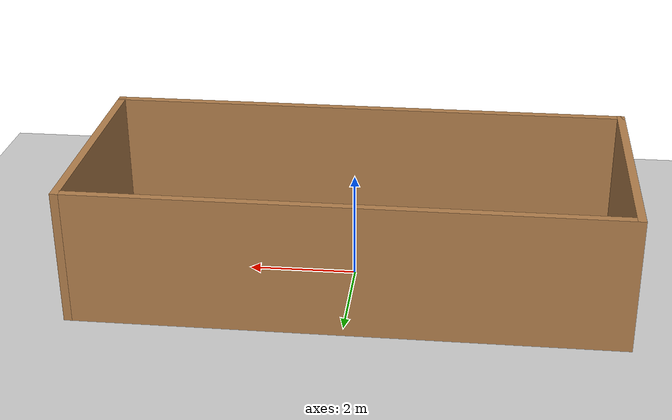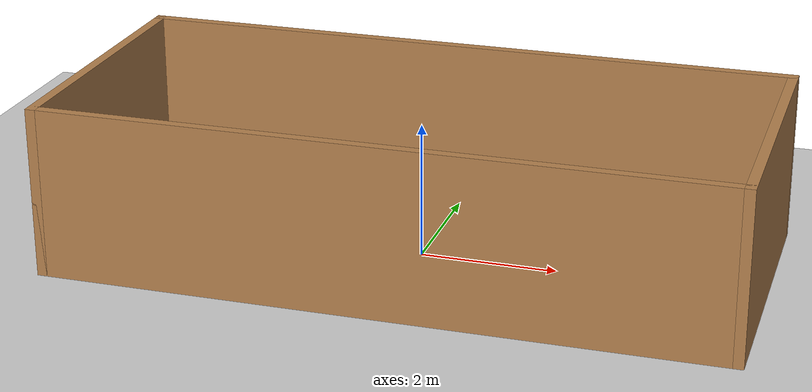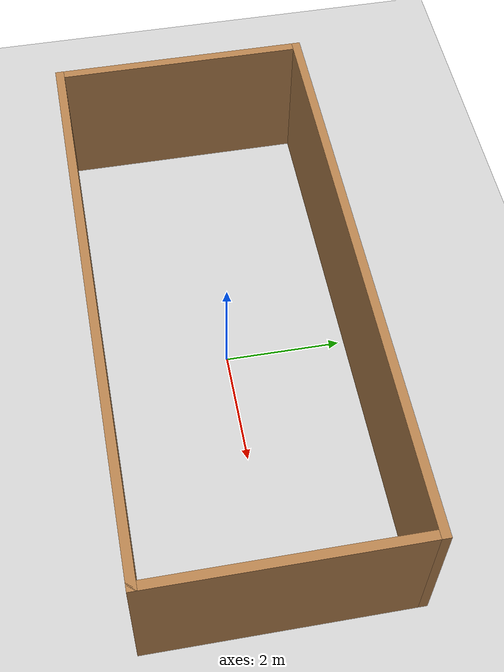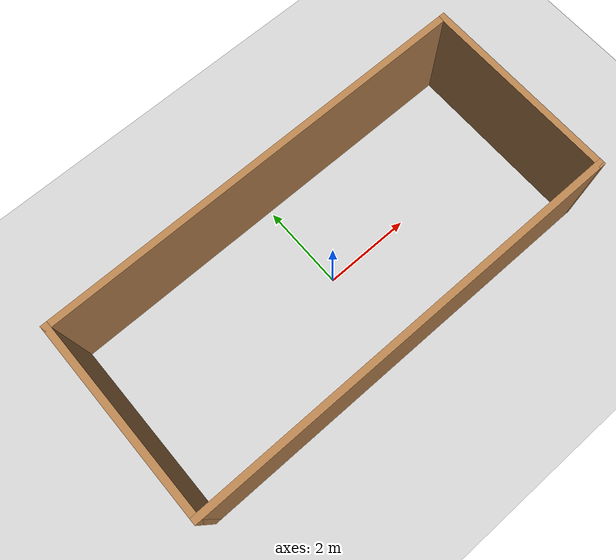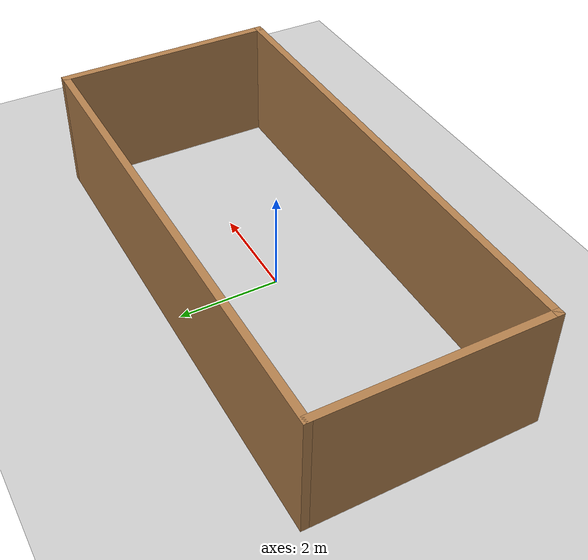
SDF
<sdf version="1.6">
 <world name="default">
  <light name="sun" type="directional">
   <pose>0 0 10 0 -0 0</pose>
   <diffuse>0.8 0.8 0.8 1</diffuse>
   <specular>0.1 0.1 0.1 1</specular>
   <attenuation>
    <range>1000</range>
    <constant>0.9</constant>
    <linear>0.01</linear>
    <quadratic>0.001</quadratic>
   </attenuation>
   <direction>-0.5 0.5 -1</direction>
  </light>
  <model name="ground_plane">
   <static>1</static>
   <link name="link">
    <collision name="collision">
     <geometry><plane><normal>0 0 1</normal><size>100 100</size></plane></geometry>
     <surface><friction><ode><mu>100</mu><mu2>50</mu2></ode></friction></surface>
    </collision>
    <visual name="visual">
     <cast_shadows>0</cast_shadows>
     <geometry><plane><normal>0 0 1</normal><size>100 100</size></plane></geometry>
     <material>
      <script><uri>file://media/materials/scripts/gazebo.material</uri><name>Gazebo/Grey</name></script>
     </material>
    </visual>
   </link>
  </model>
  <gravity>0 0 -9.8</gravity>
  <magnetic_field>6e-06 2.3e-05 -4.2e-05</magnetic_field>
  <atmosphere type="adiabatic"/>
  <physics name="default_physics" default="0" type="ode">
   <max_step_size>0.001</max_step_size>
   <real_time_factor>1</real_time_factor>
   <real_time_update_rate>1000</real_time_update_rate>
  </physics>
  <scene><ambient>0.4 0.4 0.4 1</ambient><background>0.7 0.7 0.7 1</background><shadows>1</shadows></scene>
  <spherical_coordinates>
   <surface_model>EARTH_WGS84</surface_model>
   <latitude_deg>0</latitude_deg>
   <longitude_deg>0</longitude_deg>
   <elevation>0</elevation>
   <heading_deg>0</heading_deg>
  </spherical_coordinates>
  <model name="home1">
   <pose>-0.013255 0.001635 0 0 -0 0</pose>
   <link name="Wall_35">
    <collision name="Wall_35_Collision">
     <geometry><box><size>10 0.15 2.5</size></box></geometry>
     <pose>0 0 1.25 0 -0 0</pose>
    </collision>
    <visual name="Wall_35_Visual">
     <pose>0 0 1.25 0 -0 0</pose>
     <geometry><box><size>10 0.15 2.5</size></box></geometry>
     <material>
      <script><uri>file://media/materials/scripts/gazebo.material</uri><name>Gazebo/Wood</name></script>
      <ambient>1 1 1 1</ambient>
     </material>
    </visual>
    <pose>0 -2.175 0 0 -0 0</pose>
   </link>
   <link name="Wall_36">
    <collision name="Wall_36_Collision">
     <geometry><box><size>4.5 0.15 2.5</size></box></geometry>
     <pose>0 0 1.25 0 -0 0</pose>
    </collision>
    <visual name="Wall_36_Visual">
     <pose>0 0 1.25 0 -0 0</pose>
     <geometry><box><size>4.5 0.15 2.5</size></box></geometry>
     <material>
      <script><uri>file://media/materials/scripts/gazebo.material</uri><name>Gazebo/Wood</name></script>
      <ambient>1 1 1 1</ambient>
     </material>
    </visual>
    <pose>4.925 0 0 0 -0 1.5708</pose>
   </link>
   <link name="Wall_37">
    <collision name="Wall_37_Collision">
     <geometry><box><size>10 0.15 2.5</size></box></geometry>
     <pose>0 0 1.25 0 -0 0</pose>
    </collision>
    <visual name="Wall_37_Visual">
     <pose>0 0 1.25 0 -0 0</pose>
     <geometry><box><size>10 0.15 2.5</size></box></geometry>
     <material>
      <script><uri>file://media/materials/scripts/gazebo.material</uri><name>Gazebo/Wood</name></script>
      <ambient>1 1 1 1</ambient>
     </material>
    </visual>
    <pose>0 2.175 0 0 -0 3.14159</pose>
   </link>
   <link name="Wall_38">
    <collision name="Wall_38_Collision">
     <geometry><box><size>4.5 0.15 2.5</size></box></geometry>
     <pose>0 0 1.25 0 -0 0</pose>
    </collision>
    <visual name="Wall_38_Visual">
     <pose>0 0 1.25 0 -0 0</pose>
     <geometry><box><size>4.5 0.15 2.5</size></box></geometry>
     <material>
      <script><uri>file://media/materials/scripts/gazebo.material</uri><name>Gazebo/Wood</name></script>
      <ambient>1 1 1 1</ambient>
     </material>
    </visual>
    <pose>-4.925 0 0 0 0 -1.5708</pose>
   </link>
   <static>1</static>
  </model>
 </world>
</sdf>
